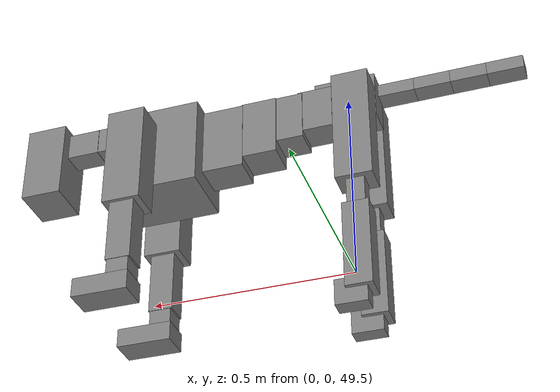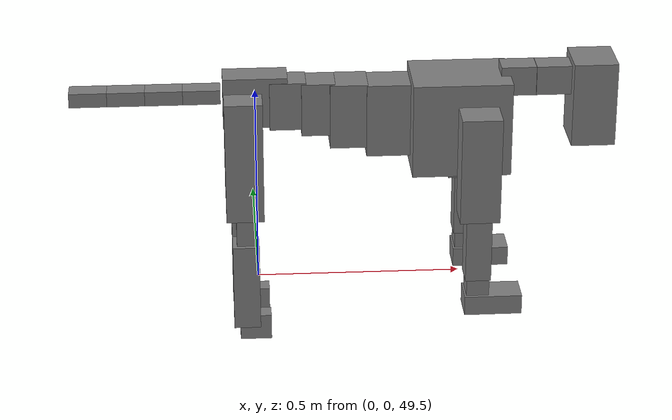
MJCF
<mujoco model="dog">

    <default>
        <joint armature="0.02" stiffness="1" damping="0.2" limited="true"/>
        <geom condim="3" friction="1 0.05 0.05" margin="0.01"/>
        <motor ctrllimited="true" ctrlrange="-1.0 1.0" forcelimited="true" gear="50"/>
    </default>

    <compiler inertiafromgeom="true" angle="radian"/>

    <option timestep="0.016" iterations="50" tolerance="1e-10" solver="Newton" jacobian="dense" cone="pyramidal"/>

    <size nconmax="20000" njmax="60000" nstack="5000000"/>
    <visual>
        <map force="0.1" zfar="30"/>
        <rgba haze="0.15 0.25 0.35 1"/>
        <quality shadowsize="2048"/>
        <global offwidth="800" offheight="800"/>
    </visual>

    <asset>
        <texture type="skybox" builtin="gradient" rgb1="0.3 0.5 0.7" rgb2="0 0 0" width="512" height="512"/>
        <texture name="texplane" type="2d" builtin="checker" rgb1=".2 .3 .4" rgb2=".1 0.15 0.2" width="512" height="512"
                 mark="cross" markrgb=".8 .8 .8"/>
        <texture name="texgeom" type="cube" builtin="flat" mark="cross" width="127" height="1278" rgb1="0.8 0.6 0.4"
                 rgb2="0.8 0.6 0.4" markrgb="1 1 1" random="0.01"/>

        <material name="matplane" reflectance="0.3" texture="texplane" texrepeat="1 1" texuniform="true"/>
        <material name="matgeom" texture="texgeom" texuniform="true" rgba="0.8 0.6 .4 1"/>
    </asset>

    <worldbody>
        <geom name="floor" pos="0 0 0" size="0 0 .25" type="plane" material="matplane" condim="3"/>

        <light directional="false" diffuse=".2 .2 .2" specular="0 0 0" pos="0 0 5" dir="0 0 -1" castshadow="false"/>
        <light mode="targetbodycom" target="torso" directional="false" diffuse=".8 .8 .8" specular="0.3 0.3 0.3"
               pos="0 0 4.0" dir="0 0 -1"/>

        <body name="root" pos="0 0 50">
            <freejoint name="root_1"/>
            <geom type="box" pos="0 0 -0.02" size="0.0774  0.0358  0.063" density="2030"/>

            <body name="spine1" pos="0.054 0 0">
                <joint name="spine1_y" axis="0 1 0" range="0 0.7" limited="true"/>
                <geom type="box" pos="0.02375 0 -0.03" size="0.04375  0.0375  0.05985" density="2030"/>

                <body name="spine2" pos="0.0612 0 0">
                    <joint name="spine2_y" axis="0 1 0" range="-0.15 0.15" limited="true"/>
                    <geom type="box" pos="0.03555  0  -0.04" size="0.04055  0.039  0.06615" density="2030"/>

                    <body name="spine3" pos="0.0730 0 0">
                        <joint name="spine3_y" axis="0 1 0" range="-0.15 0.15" limited="true"/>
                        <geom type="box" pos="0.03555  0  -0.057" size="0.04555  0.0445  0.081" density="2030"/>

                        <body name="spine4" pos="0.0780 0 0">
                            <joint name="spine4_y" axis="0 1 0" range="-0.15 0.15" limited="true"/>
                            <geom type="box" pos="0.05265  0  -0.07" size="0.05265  0.045  0.09135" density="2030"/>

                            <body name="torso" pos="0.1082 0 0">
                                <joint name="torso_y" axis="0 1 0" range="-0.15 0.15" limited="true"/>
                                <geom type="box" pos="0.11925  0  -0.085" size="0.11925  0.085  0.11745"
                                      density="2030"/>

                                <body name="neck1" pos="0.2160  0   0.0180">
                                    <joint name="neck1_y" axis="0 1 0" range="-1.2  -1" limited="true"/>
                                    <geom type="box" pos="0.0423  0  0" size="0.0423  0.03  0.036" density="2325"/>

                                    <body name="neck2" pos="0.0853  0  0">
                                        <joint name="neck2_y" axis="0 1 0" range="0.1  0" limited="true"/>
                                        <geom type="box" pos="0.0423  0  0" size="0.0423  0.03  0.036" density="2325"/>

                                        <body name="head" pos="0.0853  0  0">
                                            <joint name="head_y" axis="0 1 0" range="-0.3  -0.2" limited="true"/>
                                            <geom type="box" pos="0.0531  0  -0.055" size="0.0531  0.06  0.1044"
                                                  density="4030"/>

                                        </body>
                                    </body>
                                </body>

                                <body name="front_shoulder" pos="0.156  0   -0.0480">
                                    <joint name="front_shoulder_y" axis="0 1 0" range="-1 1.5" limited="true"/>
                                    <geom type="box" pos="0 0.13 -0.1070" size="0.0482  0.0412  0.1336" density="1158"/>
                                    <geom type="box" pos="0 -0.13 -0.1070" size="0.0482  0.0412  0.1336"
                                          density="1158"/>

                                    <body name="front_elbow" pos="0  0  -0.2139">
                                        <joint name="front_elbow_y" axis="0 1 0" range="-2 0" limited="true"/>
                                        <geom type="box" pos="0 0.13 -0.0934" size="0.0312  0.0319  0.0934"
                                              density="1081"/>
                                        <geom type="box" pos="0 -0.13 -0.0934" size="0.0312  0.0319  0.0934"
                                              density="1081"/>

                                        <body name="front_wrist" pos="0  0  -0.1867">
                                            <joint name="front_wrist_y" axis="0 1 0" range="-0.2 0" limited="true"/>
                                            <geom type="box" pos="0 0.13 -0.0281" size="0.0275  0.0306  0.0412"
                                                  density="1664"/>
                                            <geom type="box" pos="0 -0.13 -0.0281" size="0.0275  0.0306  0.0412"
                                                  density="1664"/>

                                            <body name="front_finger_end" pos="0  0  -0.0561">
                                                <joint name="front_finger_y" axis="0 1 0" range="-0.4 1"
                                                       limited="true"/>
                                                <geom type="box" pos="0.0382  0.13  -0.0094"
                                                      size="0.0700  0.0382  0.0244" density="1515"/>
                                                <geom type="box" pos="0.0382  -0.13  -0.0094"
                                                      size="0.0700  0.0382  0.0244" density="1515"/>

                                            </body>

                                        </body>
                                    </body>
                                </body>

                            </body>
                        </body>
                    </body>
                </body>
            </body>

            <body name="back_hip" pos="-0.03 0 -0.018">
                <joint name="back_hip_y" axis="0 1 0" range="-1.5 0.3" limited="true"/>
                <geom type="box" pos="0 0.07 -0.1299" size="0.0455  0.0357  0.1527" density="1154"/>
                <geom type="box" pos="0 -0.07 -0.1299" size="0.0455  0.0357  0.1527" density="1154"/>

                <body name="back_knee" pos="0  0  -0.2598">
                    <joint name="back_knee_y" axis="0 1 0" range="0 2.8" limited="true"/>
                    <geom type="box" pos="0 0.07 -0.0527" size="0.0221  0.0218  0.0683" density="1227"/>
                    <geom type="box" pos="0 -0.07 -0.0527" size="0.0221  0.0218  0.0683" density="1227"/>

                    <body name="back_ankle" pos="0  0  -0.1054">
                        <joint name="back_ankle_y" axis="0 1 0" range="-2.2 0" limited="true"/>
                        <geom type="box" pos="0 0.07 -0.0985" size="0.0323  0.0323  0.1098" density="1284"/>
                        <geom type="box" pos="0 -0.07 -0.0985" size="0.0323  0.0323  0.1098" density="1284"/>

                        <body name="back_toe_end" pos="0  0  -0.1970">
                            <joint name="back_toe_y" axis="0 1 0" range="-0.4 1" limited="true"/>
                            <geom type="box" pos="0.0209  0.07  -0.0171" size="0.0383  0.0209  0.0321" density="1515"/>
                            <geom type="box" pos="0.0209  -0.07  -0.0171" size="0.0383  0.0209  0.0321" density="1515"/>

                        </body>
                    </body>
                </body>
            </body>

            <body name="tail1" pos="-0.074 0 -0.006">
                <joint name="tail1_y" axis="0 1 0" range="-0.2 0.2" limited="true"/>
                <geom type="box" pos="-0.0536  0  0" size="0.045  0.025  0.0175" density="1587"/>

                <body name="tail2" pos="-0.09 0 0">
                    <joint name="tail2_y" axis="0 1 0" range="-0.2 0.2" limited="true"/>
                    <geom type="box" pos="-0.0536  0  0" size="0.045  0.025  0.0175" density="1587"/>

                    <body name="tail3" pos="-0.09 0 0">
                        <joint name="tail3_y" axis="0 1 0" range="-0.2 0.2" limited="true"/>
                        <geom type="box" pos="-0.0536  0  0" size="0.045  0.025  0.0175" density="1587"/>

                        <body name="tail4" pos="-0.09 0 0">
                            <joint name="tail4_y" axis="0 1 0" range="-0.2 0.2" limited="true"/>
                            <geom type="box" pos="-0.0536  0  0" size="0.045  0.025  0.0175" density="1587"/>

                        </body>
                    </body>
                </body>
            </body>
        </body>
    </worldbody>

    <actuator>
        <motor joint="spine1_y" forcerange="-150 150     "/>
        <motor joint="spine2_y" forcerange="-150 150     "/>
        <motor joint="spine3_y" forcerange="-150 150     "/>
        <motor joint="spine4_y" forcerange="-150 150     "/>
        <motor joint="torso_y" forcerange="-150 150     "/>
        <motor joint="neck1_y" forcerange="-100 100       "/>
        <motor joint="neck2_y" forcerange="-100 100       "/>
        <motor joint="head_y" forcerange="-150 150       "/>
        <motor joint="front_shoulder_y" forcerange="-186.12 188.64"/>
        <motor joint="front_elbow_y" forcerange="-185.32 146.65"/>
        <motor joint="front_wrist_y" forcerange="-121.28 123.17"/>
        <motor joint="front_finger_y" forcerange="-74.13 89.54"/>
        <motor joint="back_hip_y" forcerange="-356.39 319.00"/>
        <motor joint="back_knee_y" forcerange="-236.25 280.61"/>
        <motor joint="back_angle_y" forcerange="-225.46 190.79"/>
        <motor joint="back_toe_y" forcerange="-67.10 20.21"/>
        <motor joint="tail1_y" forcerange="-50 50     "/>
        <motor joint="tail2_y" forcerange="-50 50     "/>
        <motor joint="tail3_y" forcerange="-50 50     "/>
        <motor joint="tail4_y" forcerange="-50 50     "/>
    </actuator>
</mujoco>
